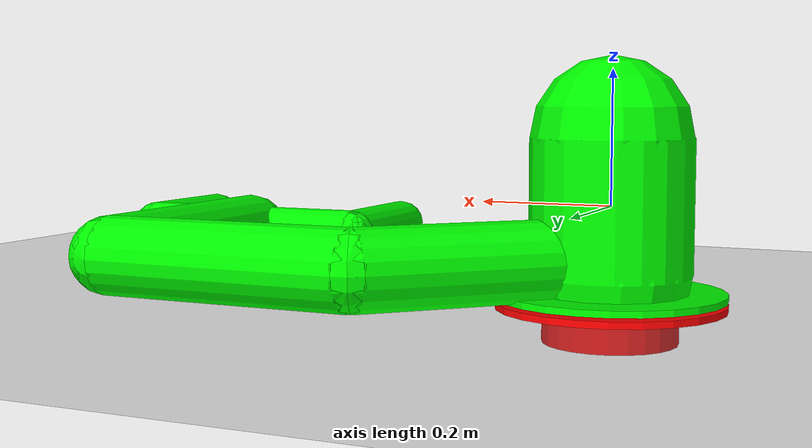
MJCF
<mujoco model="arm3d">
    <compiler inertiafromgeom="true" angle="radian" coordinate="local" />
    <custom>
        <numeric name="frame_skip" data="5" />
    </custom>
    <option timestep="0.01" gravity="0 0 0" iterations="20" integrator="Euler" />

    <default>
        <joint armature='0.04' damping="1" limited="true"/>
        <geom friction=".8 .1 .1" density="300" margin="0.002" condim="1" contype="1" conaffinity="1"/>
    </default>

    <visual>
        <headlight ambient="0.5 0.5 0.5"  />
    </visual>

    <worldbody>
        <geom type="plane" pos="0 0.5 -0.15" size="2 2 0.1" contype="1" conaffinity="1"/>

        <body name="palm" pos="0 0 0">
            <geom rgba="0. 1. 0. 1" type="capsule" fromto="0 0 -0.1 0 0 0.1" size="0.12"/>
            <body name="proximal_1" pos="0 0 -0.075" axisangle="0 0 1 0.785">
                <joint name="proximal_j_1" type="hinge" pos="0 0 0" axis="0 0 1" range="-2.5 2.5" damping="1.0" />
                <geom rgba="0. 1. 0. 1" type="capsule"  fromto="0 0 0 0.4 0 0" size="0.06" contype="1" conaffinity="1"/>
                <body name="distal_1" pos="0.4 0 0" axisangle="0 0 1 -0.785">
                    <joint name="distal_j_1" type="hinge" pos="0 0 0" axis="0 0 1" range="-2.3213 2.3" damping="1.0"/>
                    <geom rgba="0. 1. 0. 1" type="capsule"  fromto="0 0 0 0.4 0 0" size="0.06" contype="1" conaffinity="1"/>
                    <body name="distal_2" pos="0.4 0 0" axisangle="0 0 1 -1.57">
                        <joint name="distal_j_2" type="hinge" pos="0 0 0" axis="0 0 1" range="-2.3213 2.3" damping="1.0"/>
                        <geom rgba="0. 1. 0. 1" type="capsule" fromto="0 0 0 0.4 0 0" size="0.06" contype="1" conaffinity="1"/>
                        <body name="distal_4" pos="0.4 0 0">
                            <site name="tip center" pos="0.15 0. 0" size="0.01" />
                            <site name="tip arml" pos="0.1 -0.2 0" size="0.01" />
                            <site name="tip armr" pos="0.1 0.2 0" size="0.01" />
                            <geom rgba="0. 1. 0. 1" type="capsule" fromto="0 -0.2 0 0 0.2 0" size="0.04" contype="1" conaffinity="1" />
                            <geom rgba="0. 1. 0. 1" type="capsule" fromto="0 -0.2 0 0.2 -0.2 0" size="0.04" contype="1" conaffinity="1" />
                            <geom rgba="0. 1. 0. 1" type="capsule" fromto="0 0.2 0 0.2 0.2 0" size="0.04" contype="1" conaffinity="1" />
                        </body>
                    </body>
                </body>
            </body>
        </body>

        <camera pos="0 0 3.2" name="topview" />

        <body name="object" pos="0 0 -0.1">
            <geom rgba="1. 0. 0. 1" type="cylinder" size="0.1 0.1 0.1" density='0.00001' contype="1" conaffinity="1"/>
            <joint name="obj_slidex" type="slide" pos="0.025 0.025 0.025" axis="1 0 0" range="-10.3213 10.3" damping="0.5"/>
            <joint name="obj_slidey" type="slide" pos="0.025 0.025 0.025" axis="0 1 0" range="-10.3213 10.3" damping="0.5"/>
        </body>

        <body name="goal" pos="0 0 -0.145">
            <geom rgba="1. 0. 0. 1" type="cylinder" size="0.17 0.005 0.2" density='0.00001' contype="0" conaffinity="0"/>
            <joint name="goal_slidex" type="slide" pos="0 0 0" axis="1 0 0" range="-10.3213 10.3" damping="0.5"/>
            <joint name="goal_slidey" type="slide" pos="0 0 0" axis="0 1 0" range="-10.3213 10.3" damping="0.5"/>
        </body>

        <body name="hand_goal" pos="0 0 -0.13">
            <geom rgba="0. 1. 0. 1" type="cylinder" size="0.17 0.005 0.2" density='0.00001' contype="0" conaffinity="0"/>
            <joint name="hand_goal_slidex" type="slide" pos="0 0 0" axis="1 0
             0" range="-5 5" damping="0.5"/>
            <joint name="hand_goal_slidey" type="slide" pos="0 0 0" axis="0 1
             0" range="-5 5" damping="0.5"/>
        </body>

    </worldbody>

    <actuator>
        <motor joint="proximal_j_1" ctrlrange="-3 3" ctrllimited="true"/>
        <motor joint="distal_j_1" ctrlrange="-3 3" ctrllimited="true"/>
        <motor joint="distal_j_2" ctrlrange="-3 3" ctrllimited="true"/>
    </actuator>
</mujoco>
